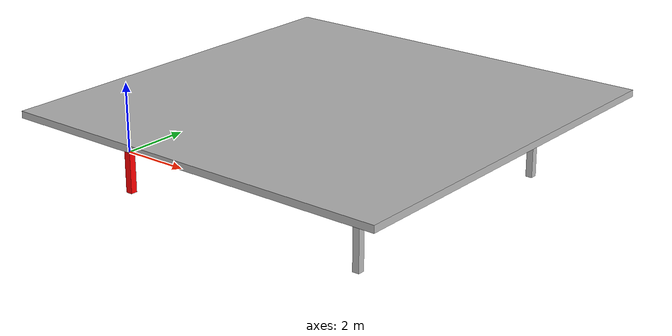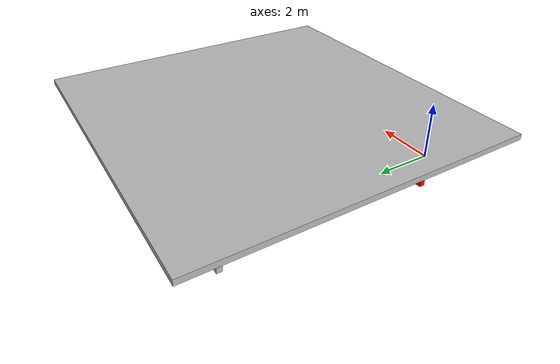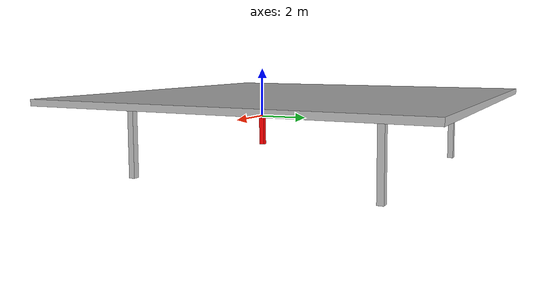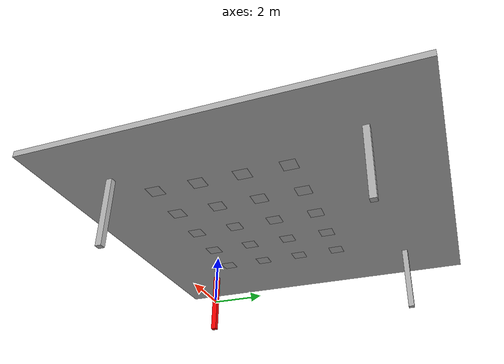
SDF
<?xml version='1.0'?>
<sdf version='1.4'>
  <model name="room_marks">
<!--========link========================================================- -->
<!--====link_column_1===- -->
    <link name='link_column_1'>
      <pose>0 0 0 0 0 0</pose>
      <inertial>
        <mass>2.390</mass>
        <inertia>
          <ixx>0.00058</ixx>
          <ixy>0</ixy>
          <ixz>0</ixz>
          <iyy>0.00058</iyy>
          <iyz>0</iyz>
          <izz>0.00019</izz>
        </inertia>
      </inertial>
      <collision name='collision'>
        <geometry>
                <box>
                  <size>.2 .2 2.4</size>
                </box>
        </geometry>
      </collision>

      <visual name='visual'>
        <geometry>
                <box>
                   <size>.2 .2 2.4</size>
                </box>
        </geometry>
        <material>
          <ambient>1 0 0 1</ambient>
          <diffuse>1 0 0 1</diffuse>
          <specular>0.1 0.1 0.1 1</specular>
          <emissive>0 0 0 0</emissive>
        </material>

      </visual>
    </link>
 <!--====link_column_2===- -->
     <link name='link_column_2'>
      <pose>0 8 0 0 0 0</pose>
      <inertial>
        <mass>2.390</mass>
        <inertia>
          <ixx>0.00058</ixx>
          <ixy>0</ixy>
          <ixz>0</ixz>
          <iyy>0.00058</iyy>
          <iyz>0</iyz>
          <izz>0.00019</izz>
        </inertia>
      </inertial>
      <collision name='collision'>
        <geometry>
                <box>
                  <size>.2 .2 2.4</size>
                </box>
        </geometry>
      </collision>

      <visual name='visual'>
        <geometry>
                <box>
                   <size>.2 .2 2.4</size>
                </box>
        </geometry>
      </visual>
    </link>
<!--====link_column_3===- -->
     <link name='link_column_3'>
      <pose>8 8 0 0 0 0</pose>
      <inertial>
        <mass>2.390</mass>
        <inertia>
          <ixx>0.00058</ixx>
          <ixy>0</ixy>
          <ixz>0</ixz>
          <iyy>0.00058</iyy>
          <iyz>0</iyz>
          <izz>0.00019</izz>
        </inertia>
      </inertial>
      <collision name='collision'>
        <geometry>
                <box>
                  <size>.2 .2 2.4</size>
                </box>
        </geometry>
      </collision>

      <visual name='visual'>
        <geometry>
                <box>
                   <size>.2 .2 2.4</size>
                </box>
        </geometry>
      </visual>
    </link>
<!--====link_column_4===- -->
     <link name='link_column_4'>
      <pose>8 0 0 0 0 0</pose>
      <inertial>
        <mass>2.390</mass>
        <inertia>
          <ixx>0.00058</ixx>
          <ixy>0</ixy>
          <ixz>0</ixz>
          <iyy>0.00058</iyy>
          <iyz>0</iyz>
          <izz>0.00019</izz>
        </inertia>
      </inertial>
      <collision name='collision'>
        <geometry>
                <box>
                  <size>.2 .2 2.4</size>
                </box>
        </geometry>
      </collision>

      <visual name='visual'>
        <geometry>
                <box>
                   <size>.2 .2 2.4</size>
                </box>
        </geometry>
      </visual>
    </link>
<!--====link_ceiling===- -->
     <link name='link_ceiling'>
      <pose>4 4 1.2 0 0 0</pose>
      <collision name='collision'>
        <geometry>
                <box>
                  <size>12 12 0.2</size>
                </box>
        </geometry>
      </collision>

      <visual name='visual'>
        <geometry>
                <box>
                   <size>12 12 0.2</size>
                </box>
        </geometry>
      </visual>
    </link>

<!--=================================mark=================================================================================- -->
<!--=====mark1====- -->
    <link name='mark_1'>
      <pose>1.0 1.0 1.1 0 0 0</pose>
      <inertial>
        <mass>0.390</mass>
        <inertia>
          <ixx>0.00058</ixx>
          <ixy>0</ixy>
          <ixz>0</ixz>
          <iyy>0.00058</iyy>
          <iyz>0</iyz>
          <izz>0.00019</izz>
        </inertia>
      </inertial>
      <collision name='collision'>
        <geometry>
                <box>
                  <size>.496 .496 .01</size>
                </box>
        </geometry>
      </collision>

      <visual name='visual'>
        <geometry>
                <box>
                  <size>.496 .496 .01</size>
                </box>
        </geometry>

        <material>
          <script>
            <uri>model://room_marks/materials/1/scripts</uri>
            <uri>model://room_marks/materials/1/textures</uri>
            <name>room_marks/Diffuse_1</name>
          </script>
        </material>
      </visual>
    </link>
<!--=====mark2====- -->
    <link name='mark_2'>
      <pose>2.5 1.0 1.1 0 0 0</pose>
      <inertial>
        <mass>0.390</mass>
        <inertia>
          <ixx>0.00058</ixx>
          <ixy>0</ixy>
          <ixz>0</ixz>
          <iyy>0.00058</iyy>
          <iyz>0</iyz>
          <izz>0.00019</izz>
        </inertia>
      </inertial>
      <collision name='collision2'>
        <geometry>
                <box>
                  <size>.496 .496 .01</size>
                </box>
        </geometry>
      </collision>

      <visual name='visual'>
        <geometry>
                <box>
                  <size>.496 .496 .01</size>
                </box>
        </geometry>

        <material>
          <script>
            <uri>model://room_marks/materials/2/scripts</uri>
            <uri>model://room_marks/materials/2/textures</uri>
            <name>room_marks/Diffuse_2</name>
          </script>
        </material>
      </visual>
    </link>
<!--=====mark3====- -->
    <link name='mark_3'>
      <pose>4 1.0 1.1 0 0 0</pose>
      <inertial>
        <mass>0.390</mass>
        <inertia>
          <ixx>0.00058</ixx>
          <ixy>0</ixy>
          <ixz>0</ixz>
          <iyy>0.00058</iyy>
          <iyz>0</iyz>
          <izz>0.00019</izz>
        </inertia>
      </inertial>
      <collision name='collision'>
        <geometry>
                <box>
                  <size>.496 .496 .01</size>
                </box>
        </geometry>
      </collision>

      <visual name='visual'>
        <geometry>
                <box>
                  <size>.496 .496 .01</size>
                </box>
        </geometry>

        <material>
          <script>
            <uri>model://room_marks/materials/3/scripts</uri>
            <uri>model://room_marks/materials/3/textures</uri>
            <name>room_marks/Diffuse_3</name>
          </script>
        </material>
      </visual>
    </link>
<!--=====mark4====- -->
    <link name='mark_4'>
      <pose>5.5 1.0 1.1 0 0 0</pose>
      <inertial>
        <mass>0.390</mass>
        <inertia>
          <ixx>0.00058</ixx>
          <ixy>0</ixy>
          <ixz>0</ixz>
          <iyy>0.00058</iyy>
          <iyz>0</iyz>
          <izz>0.00019</izz>
        </inertia>
      </inertial>
      <collision name='collision'>
        <geometry>
                <box>
                  <size>.496 .496 .01</size>
                </box>
        </geometry>
      </collision>

      <visual name='visual'>
        <geometry>
                <box>
                  <size>.496 .496 .01</size>
                </box>
        </geometry>

        <material>
          <script>
            <uri>model://room_marks/materials/4/scripts</uri>
            <uri>model://room_marks/materials/4/textures</uri>
            <name>room_marks/Diffuse_4</name>
          </script>
        </material>
      </visual>
    </link>

<!--=====mark5====- -->
    <link name='mark_5'>
      <pose>7.0 1.0 1.1 0 0 0</pose>
      <inertial>
        <mass>0.390</mass>
        <inertia>
          <ixx>0.00058</ixx>
          <ixy>0</ixy>
          <ixz>0</ixz>
          <iyy>0.00058</iyy>
          <iyz>0</iyz>
          <izz>0.00019</izz>
        </inertia>
      </inertial>
      <collision name='collision'>
        <geometry>
                <box>
                  <size>.496 .496 .01</size>
                </box>
        </geometry>
      </collision>

      <visual name='visual'>
        <geometry>
                <box>
                  <size>.496 .496 .01</size>
                </box>
        </geometry>

        <material>
          <script>
            <uri>model://room_marks/materials/5/scripts</uri>
            <uri>model://room_marks/materials/5/textures</uri>
            <name>room_marks/Diffuse_5</name>
          </script>
        </material>
      </visual>
    </link>

<!--=====mark6====- -->
    <link name='mark_6'>
      <pose>1.0 2.5 1.1 0 0 0</pose>
      <inertial>
        <mass>0.390</mass>
        <inertia>
          <ixx>0.00058</ixx>
          <ixy>0</ixy>
          <ixz>0</ixz>
          <iyy>0.00058</iyy>
          <iyz>0</iyz>
          <izz>0.00019</izz>
        </inertia>
      </inertial>
      <collision name='collision'>
        <geometry>
                <box>
                  <size>.496 .496 .01</size>
                </box>
        </geometry>
      </collision>

      <visual name='visual'>
        <geometry>
                <box>
                  <size>.496 .496 .01</size>
                </box>
        </geometry>

        <material>
          <script>
            <uri>model://room_marks/materials/6/scripts</uri>
            <uri>model://room_marks/materials/6/textures</uri>
            <name>room_marks/Diffuse_6</name>
          </script>
        </material>
      </visual>
    </link>
<!--=====mark7====- -->
    <link name='mark_7'>
      <pose>2.5 2.5 1.1 0 0 0</pose>
      <inertial>
        <mass>0.390</mass>
        <inertia>
          <ixx>0.00058</ixx>
          <ixy>0</ixy>
          <ixz>0</ixz>
          <iyy>0.00058</iyy>
          <iyz>0</iyz>
          <izz>0.00019</izz>
        </inertia>
      </inertial>
      <collision name='collision'>
        <geometry>
                <box>
                  <size>.496 .496 .01</size>
                </box>
        </geometry>
      </collision>

      <visual name='visual'>
        <geometry>
                <box>
                  <size>.496 .496 .01</size>
                </box>
        </geometry>

        <material>
          <script>
            <uri>model://room_marks/materials/7/scripts</uri>
            <uri>model://room_marks/materials/7/textures</uri>
            <name>room_marks/Diffuse_7</name>
          </script>
        </material>
      </visual>
    </link>
<!--=====mark8====- -->
    <link name='mark_8'>
      <pose>4 2.5 1.1 0 0 0</pose>
      <inertial>
        <mass>0.390</mass>
        <inertia>
          <ixx>0.00058</ixx>
          <ixy>0</ixy>
          <ixz>0</ixz>
          <iyy>0.00058</iyy>
          <iyz>0</iyz>
          <izz>0.00019</izz>
        </inertia>
      </inertial>
      <collision name='collision'>
        <geometry>
                <box>
                  <size>.496 .496 .01</size>
                </box>
        </geometry>
      </collision>

      <visual name='visual'>
        <geometry>
                <box>
                  <size>.496 .496 .01</size>
                </box>
        </geometry>

        <material>
          <script>
            <uri>model://room_marks/materials/8/scripts</uri>
            <uri>model://room_marks/materials/8/textures</uri>
            <name>room_marks/Diffuse_8</name>
          </script>
        </material>
      </visual>
    </link>
<!--=====mark9====- -->
    <link name='mark_9'>
      <pose>5.5 2.5 1.1 0 0 0</pose>
      <inertial>
        <mass>0.390</mass>
        <inertia>
          <ixx>0.00058</ixx>
          <ixy>0</ixy>
          <ixz>0</ixz>
          <iyy>0.00058</iyy>
          <iyz>0</iyz>
          <izz>0.00019</izz>
        </inertia>
      </inertial>
      <collision name='collision'>
        <geometry>
                <box>
                  <size>.496 .496 .01</size>
                </box>
        </geometry>
      </collision>

      <visual name='visual'>
        <geometry>
                <box>
                  <size>.496 .496 .01</size>
                </box>
        </geometry>

        <material>
          <script>
            <uri>model://room_marks/materials/9/scripts</uri>
            <uri>model://room_marks/materials/9/textures</uri>
            <name>room_marks/Diffuse_9</name>
          </script>
        </material>
      </visual>
    </link>

<!--=====mark10====- -->
    <link name='mark_10'>
      <pose>7.0 2.5 1.1 0 0 0</pose>
      <inertial>
        <mass>0.390</mass>
        <inertia>
          <ixx>0.00058</ixx>
          <ixy>0</ixy>
          <ixz>0</ixz>
          <iyy>0.00058</iyy>
          <iyz>0</iyz>
          <izz>0.00019</izz>
        </inertia>
      </inertial>
      <collision name='collision'>
        <geometry>
                <box>
                  <size>.496 .496 .01</size>
                </box>
        </geometry>
      </collision>

      <visual name='visual'>
        <geometry>
                <box>
                  <size>.496 .496 .01</size>
                </box>
        </geometry>

        <material>
          <script>
            <uri>model://room_marks/materials/10/scripts</uri>
            <uri>model://room_marks/materials/10/textures</uri>
            <name>room_marks/Diffuse_10</name>
          </script>
        </material>
      </visual>
    </link>

<!--=====mark1====- -->
    <link name='mark_11'>
      <pose>1.0 4.0 1.1 0 0 0</pose>
      <inertial>
        <mass>0.390</mass>
        <inertia>
          <ixx>0.00058</ixx>
          <ixy>0</ixy>
          <ixz>0</ixz>
          <iyy>0.00058</iyy>
          <iyz>0</iyz>
          <izz>0.00019</izz>
        </inertia>
      </inertial>
      <collision name='collision'>
        <geometry>
                <box>
                  <size>.496 .496 .01</size>
                </box>
        </geometry>
      </collision>

      <visual name='visual'>
        <geometry>
                <box>
                  <size>.496 .496 .01</size>
                </box>
        </geometry>

        <material>
          <script>
            <uri>model://room_marks/materials/11/scripts</uri>
            <uri>model://room_marks/materials/11/textures</uri>
            <name>room_marks/Diffuse_11</name>
          </script>
        </material>
      </visual>
    </link>
<!--=====mark12====- -->
    <link name='mark_12'>
      <pose>2.5 4 1.1 0 0 0</pose>
      <inertial>
        <mass>0.390</mass>
        <inertia>
          <ixx>0.00058</ixx>
          <ixy>0</ixy>
          <ixz>0</ixz>
          <iyy>0.00058</iyy>
          <iyz>0</iyz>
          <izz>0.00019</izz>
        </inertia>
      </inertial>
      <collision name='collision'>
        <geometry>
                <box>
                  <size>.496 .496 .01</size>
                </box>
        </geometry>
      </collision>

      <visual name='visual'>
        <geometry>
                <box>
                  <size>.496 .496 .01</size>
                </box>
        </geometry>

        <material>
          <script>
            <uri>model://room_marks/materials/12/scripts</uri>
            <uri>model://room_marks/materials/12/textures</uri>
            <name>room_marks/Diffuse_12</name>
          </script>
        </material>
      </visual>
    </link>
<!--=====mark13====- -->
    <link name='mark_13'>
      <pose>4 4 1.1 0 0 0</pose>
      <inertial>
        <mass>0.390</mass>
        <inertia>
          <ixx>0.00058</ixx>
          <ixy>0</ixy>
          <ixz>0</ixz>
          <iyy>0.00058</iyy>
          <iyz>0</iyz>
          <izz>0.00019</izz>
        </inertia>
      </inertial>
      <collision name='collision'>
        <geometry>
                <box>
                  <size>.496 .496 .01</size>
                </box>
        </geometry>
      </collision>

      <visual name='visual'>
        <geometry>
                <box>
                  <size>.496 .496 .01</size>
                </box>
        </geometry>

        <material>
          <script>
            <uri>model://room_marks/materials/13/scripts</uri>
            <uri>model://room_marks/materials/13/textures</uri>
            <name>room_marks/Diffuse_13</name>
          </script>
        </material>
      </visual>
    </link>
<!--=====mark14====- -->
    <link name='mark_14'>
      <pose>5.5 4 1.1 0 0 0</pose>
      <inertial>
        <mass>0.390</mass>
        <inertia>
          <ixx>0.00058</ixx>
          <ixy>0</ixy>
          <ixz>0</ixz>
          <iyy>0.00058</iyy>
          <iyz>0</iyz>
          <izz>0.00019</izz>
        </inertia>
      </inertial>
      <collision name='collision'>
        <geometry>
                <box>
                  <size>.496 .496 .01</size>
                </box>
        </geometry>
      </collision>

      <visual name='visual'>
        <geometry>
                <box>
                  <size>.496 .496 .01</size>
                </box>
        </geometry>

        <material>
          <script>
            <uri>model://room_marks/materials/14/scripts</uri>
            <uri>model://room_marks/materials/14/textures</uri>
            <name>room_marks/Diffuse_14</name>
          </script>
        </material>
      </visual>
    </link>

<!--=====mark15====- -->
    <link name='mark_15'>
      <pose>7.0 4 1.1 0 0 0</pose>
      <inertial>
        <mass>0.390</mass>
        <inertia>
          <ixx>0.00058</ixx>
          <ixy>0</ixy>
          <ixz>0</ixz>
          <iyy>0.00058</iyy>
          <iyz>0</iyz>
          <izz>0.00019</izz>
        </inertia>
      </inertial>
      <collision name='collision'>
        <geometry>
                <box>
                  <size>.496 .496 .01</size>
                </box>
        </geometry>
      </collision>

      <visual name='visual'>
        <geometry>
                <box>
                  <size>.496 .496 .01</size>
                </box>
        </geometry>

        <material>
          <script>
            <uri>model://room_marks/materials/15/scripts</uri>
            <uri>model://room_marks/materials/15/textures</uri>
            <name>room_marks/Diffuse_15</name>
          </script>
        </material>
      </visual>
    </link>

<!--=====mark16====- -->
    <link name='mark_16'>
      <pose>1.0 5.5 1.1 0 0 0</pose>
      <inertial>
        <mass>0.390</mass>
        <inertia>
          <ixx>0.00058</ixx>
          <ixy>0</ixy>
          <ixz>0</ixz>
          <iyy>0.00058</iyy>
          <iyz>0</iyz>
          <izz>0.00019</izz>
        </inertia>
      </inertial>
      <collision name='collision'>
        <geometry>
                <box>
                  <size>.496 .496 .01</size>
                </box>
        </geometry>
      </collision>

      <visual name='visual'>
        <geometry>
                <box>
                  <size>.496 .496 .01</size>
                </box>
        </geometry>

        <material>
          <script>
            <uri>model://room_marks/materials/16/scripts</uri>
            <uri>model://room_marks/materials/16/textures</uri>
            <name>room_marks/Diffuse_16</name>
          </script>
        </material>
      </visual>
    </link>
<!--=====mark17====- -->
    <link name='mark_17'>
      <pose>2.5 5.5 1.1 0 0 0</pose>
      <inertial>
        <mass>0.390</mass>
        <inertia>
          <ixx>0.00058</ixx>
          <ixy>0</ixy>
          <ixz>0</ixz>
          <iyy>0.00058</iyy>
          <iyz>0</iyz>
          <izz>0.00019</izz>
        </inertia>
      </inertial>
      <collision name='collision'>
        <geometry>
                <box>
                  <size>.496 .496 .01</size>
                </box>
        </geometry>
      </collision>

      <visual name='visual'>
        <geometry>
                <box>
                  <size>.496 .496 .01</size>
                </box>
        </geometry>

        <material>
          <script>
            <uri>model://room_marks/materials/17/scripts</uri>
            <uri>model://room_marks/materials/17/textures</uri>
            <name>room_marks/Diffuse_17</name>
          </script>
        </material>
      </visual>
    </link>
<!--=====mark18====- -->
    <link name='mark_18'>
      <pose>4 5.5 1.1 0 0 0</pose>
      <inertial>
        <mass>0.390</mass>
        <inertia>
          <ixx>0.00058</ixx>
          <ixy>0</ixy>
          <ixz>0</ixz>
          <iyy>0.00058</iyy>
          <iyz>0</iyz>
          <izz>0.00019</izz>
        </inertia>
      </inertial>
      <collision name='collision'>
        <geometry>
                <box>
                  <size>.496 .496 .01</size>
                </box>
        </geometry>
      </collision>

      <visual name='visual'>
        <geometry>
                <box>
                  <size>.496 .496 .01</size>
                </box>
        </geometry>

        <material>
          <script>
            <uri>model://room_marks/materials/18/scripts</uri>
            <uri>model://room_marks/materials/18/textures</uri>
            <name>room_marks/Diffuse_18</name>
          </script>
        </material>
      </visual>
    </link>
<!--=====mark19====- -->
    <link name='mark_19'>
      <pose>5.5 5.5 1.1 0 0 0</pose>
      <inertial>
        <mass>0.390</mass>
        <inertia>
          <ixx>0.00058</ixx>
          <ixy>0</ixy>
          <ixz>0</ixz>
          <iyy>0.00058</iyy>
          <iyz>0</iyz>
          <izz>0.00019</izz>
        </inertia>
      </inertial>
      <collision name='collision'>
        <geometry>
                <box>
                  <size>.496 .496 .01</size>
                </box>
        </geometry>
      </collision>

      <visual name='visual'>
        <geometry>
                <box>
                  <size>.496 .496 .01</size>
                </box>
        </geometry>

        <material>
          <script>
            <uri>model://room_marks/materials/19/scripts</uri>
            <uri>model://room_marks/materials/19/textures</uri>
            <name>room_marks/Diffuse_19</name>
          </script>
        </material>
      </visual>
    </link>

<!--=====mark20====- -->
    <link name='mark_20'>
      <pose>7.0 5.5 1.1 0 0 0</pose>
      <inertial>
        <mass>0.390</mass>
        <inertia>
          <ixx>0.00058</ixx>
          <ixy>0</ixy>
          <ixz>0</ixz>
          <iyy>0.00058</iyy>
          <iyz>0</iyz>
          <izz>0.00019</izz>
        </inertia>
      </inertial>
      <collision name='collision'>
        <geometry>
                <box>
                  <size>.496 .496 .01</size>
                </box>
        </geometry>
      </collision>

      <visual name='visual'>
        <geometry>
                <box>
                  <size>.496 .496 .01</size>
                </box>
        </geometry>

        <material>
          <script>
            <uri>model://room_marks/materials/20/scripts</uri>
            <uri>model://room_marks/materials/20/textures</uri>
            <name>room_marks/Diffuse_20</name>
          </script>
        </material>
      </visual>
    </link>

<!--========================joint========================================================================================- -->

    <joint name="camera_joint_1" type="revolute">
      <child>link_column_1</child>
      <parent>link_ceiling</parent>
      <axis>
        <xyz>0 0 1</xyz>
        <limit>
          <upper>0</upper>
          <lower>0</lower>
        </limit>
      </axis>
    </joint>

    <joint name="camera_joint_2" type="revolute">
      <child>link_column_2</child>
      <parent>link_ceiling</parent>
      <axis>
        <xyz>0 0 1</xyz>
        <limit>
          <upper>0</upper>
          <lower>0</lower>
        </limit>
      </axis>
    </joint>

    <joint name="camera_joint_3" type="revolute">
      <child>link_column_3</child>
      <parent>link_ceiling</parent>
      <axis>
        <xyz>0 0 1</xyz>
        <limit>
          <upper>0</upper>
          <lower>0</lower>
        </limit>
      </axis>
    </joint>

    <joint name="camera_joint_4" type="revolute">
      <child>link_column_4</child>
      <parent>link_ceiling</parent>
      <axis>
        <xyz>0 0 1</xyz>
        <limit>
          <upper>0</upper>
          <lower>0</lower>
        </limit>
      </axis>
    </joint>
<!--=================joint_mark===============================================================================- -->
<!--=====joint_mark1====- -->
    <joint name="mark_joint_1" type="revolute">
      <child>mark_1</child>
      <parent>link_ceiling</parent>
      <pose>0 0 1.1 0 0 0</pose>
      <axis>
        <xyz>0 0 1</xyz>
        <limit>
          <upper>0</upper>
          <lower>0</lower>
        </limit>
      </axis>
    </joint>
<!--=====joint_mark2====- -->
    <joint name="mark_joint_2" type="revolute">
      <child>mark_2</child>
      <parent>link_ceiling</parent>
      <pose>0 0 1.1 0 0 0</pose>
      <axis>
        <xyz>0 0 1</xyz>
        <limit>
          <upper>0</upper>
          <lower>0</lower>
        </limit>
      </axis>
    </joint>

<!--=====joint_mark3====- -->
    <joint name="mark_joint_3" type="revolute">
      <child>mark_3</child>
      <parent>link_ceiling</parent>
      <pose>0 0 1.1 0 0 0</pose>
      <axis>
        <xyz>0 0 1</xyz>
        <limit>
          <upper>0</upper>
          <lower>0</lower>
        </limit>
      </axis>
    </joint>
<!--=====joint_mark4====- -->
    <joint name="mark_joint_4" type="revolute">
      <child>mark_4</child>
      <parent>link_ceiling</parent>
      <pose>0 0 1.1 0 0 0</pose>
      <axis>
        <xyz>0 0 1</xyz>
        <limit>
          <upper>0</upper>
          <lower>0</lower>
        </limit>
      </axis>
    </joint>
<!--=====joint_mark5====- -->
    <joint name="mark_joint_5" type="revolute">
      <child>mark_5</child>
      <parent>link_ceiling</parent>
      <pose>0 0 1.1 0 0 0</pose>
      <axis>
        <xyz>0 0 1</xyz>
        <limit>
          <upper>0</upper>
          <lower>0</lower>
        </limit>
      </axis>
    </joint>
<!--=====joint_mark6====- -->
    <joint name="mark_joint_6" type="revolute">
      <child>mark_6</child>
      <parent>link_ceiling</parent>
      <pose>0 0 1.1 0 0 0</pose>
      <axis>
        <xyz>0 0 1</xyz>
        <limit>
          <upper>0</upper>
          <lower>0</lower>
        </limit>
      </axis>
    </joint>
<!--=====joint_mark7====- -->
    <joint name="mark_joint_7" type="revolute">
      <child>mark_7</child>
      <parent>link_ceiling</parent>
      <pose>0 0 1.1 0 0 0</pose>
      <axis>
        <xyz>0 0 1</xyz>
        <limit>
          <upper>0</upper>
          <lower>0</lower>
        </limit>
      </axis>
    </joint>

<!--=====joint_mark8====- -->
    <joint name="mark_joint_8" type="revolute">
      <child>mark_8</child>
      <parent>link_ceiling</parent>
      <pose>0 0 1.1 0 0 0</pose>
      <axis>
        <xyz>0 0 1</xyz>
        <limit>
          <upper>0</upper>
          <lower>0</lower>
        </limit>
      </axis>
    </joint>
<!--=====joint_mark9====- -->
    <joint name="mark_joint_9" type="revolute">
      <child>mark_9</child>
      <parent>link_ceiling</parent>
      <pose>0 0 1.1 0 0 0</pose>
      <axis>
        <xyz>0 0 1</xyz>
        <limit>
          <upper>0</upper>
          <lower>0</lower>
        </limit>
      </axis>
    </joint>
<!--=====joint_mark10====- -->
    <joint name="mark_joint_10" type="revolute">
      <child>mark_10</child>
      <parent>link_ceiling</parent>
      <pose>0 0 1.1 0 0 0</pose>
      <axis>
        <xyz>0 0 1</xyz>
        <limit>
          <upper>0</upper>
          <lower>0</lower>
        </limit>
      </axis>
    </joint>
<!--=====joint_mark11====- -->
    <joint name="mark_joint_11" type="revolute">
      <child>mark_11</child>
      <parent>link_ceiling</parent>
      <pose>0 0 1.1 0 0 0</pose>
      <axis>
        <xyz>0 0 1</xyz>
        <limit>
          <upper>0</upper>
          <lower>0</lower>
        </limit>
      </axis>
    </joint>
<!--=====joint_mark12====- -->
    <joint name="mark_joint_12" type="revolute">
      <child>mark_12</child>
      <parent>link_ceiling</parent>
      <pose>0 0 1.1 0 0 0</pose>
      <axis>
        <xyz>0 0 1</xyz>
        <limit>
          <upper>0</upper>
          <lower>0</lower>
        </limit>
      </axis>
    </joint>

<!--=====joint_mark13====- -->
    <joint name="mark_joint_13" type="revolute">
      <child>mark_13</child>
      <parent>link_ceiling</parent>
      <pose>0 0 1.1 0 0 0</pose>
      <axis>
        <xyz>0 0 1</xyz>
        <limit>
          <upper>0</upper>
          <lower>0</lower>
        </limit>
      </axis>
    </joint>
<!--=====joint_mark14====- -->
    <joint name="mark_joint_14" type="revolute">
      <child>mark_14</child>
      <parent>link_ceiling</parent>
      <pose>0 0 1.1 0 0 0</pose>
      <axis>
        <xyz>0 0 1</xyz>
        <limit>
          <upper>0</upper>
          <lower>0</lower>
        </limit>
      </axis>
    </joint>
<!--=====joint_mark15====- -->
    <joint name="mark_joint_15" type="revolute">
      <child>mark_15</child>
      <parent>link_ceiling</parent>
      <pose>0 0 1.1 0 0 0</pose>
      <axis>
        <xyz>0 0 1</xyz>
        <limit>
          <upper>0</upper>
          <lower>0</lower>
        </limit>
      </axis>
    </joint>
<!--=====joint_mark16====- -->
    <joint name="mark_joint_16" type="revolute">
      <child>mark_16</child>
      <parent>link_ceiling</parent>
      <pose>0 0 1.1 0 0 0</pose>
      <axis>
        <xyz>0 0 1</xyz>
        <limit>
          <upper>0</upper>
          <lower>0</lower>
        </limit>
      </axis>
    </joint>
<!--=====joint_mark17====- -->
    <joint name="mark_joint_17" type="revolute">
      <child>mark_17</child>
      <parent>link_ceiling</parent>
      <pose>0 0 1.1 0 0 0</pose>
      <axis>
        <xyz>0 0 1</xyz>
        <limit>
          <upper>0</upper>
          <lower>0</lower>
        </limit>
      </axis>
    </joint>

<!--=====joint_mark18====- -->
    <joint name="mark_joint_18" type="revolute">
      <child>mark_18</child>
      <parent>link_ceiling</parent>
      <pose>0 0 1.1 0 0 0</pose>
      <axis>
        <xyz>0 0 1</xyz>
        <limit>
          <upper>0</upper>
          <lower>0</lower>
        </limit>
      </axis>
    </joint>
<!--=====joint_mark19====- -->
    <joint name="mark_joint_19" type="revolute">
      <child>mark_19</child>
      <parent>link_ceiling</parent>
      <pose>0 0 1.1 0 0 0</pose>
      <axis>
        <xyz>0 0 1</xyz>
        <limit>
          <upper>0</upper>
          <lower>0</lower>
        </limit>
      </axis>
    </joint>
<!--=====joint_mark20====- -->
    <joint name="mark_joint_20" type="revolute">
      <child>mark_20</child>
      <parent>link_ceiling</parent>
      <pose>0 0 1.1 0 0 0</pose>
      <axis>
        <xyz>0 0 1</xyz>
        <limit>
          <upper>0</upper>
          <lower>0</lower>
        </limit>
      </axis>
    </joint>

  </model>
</sdf>
